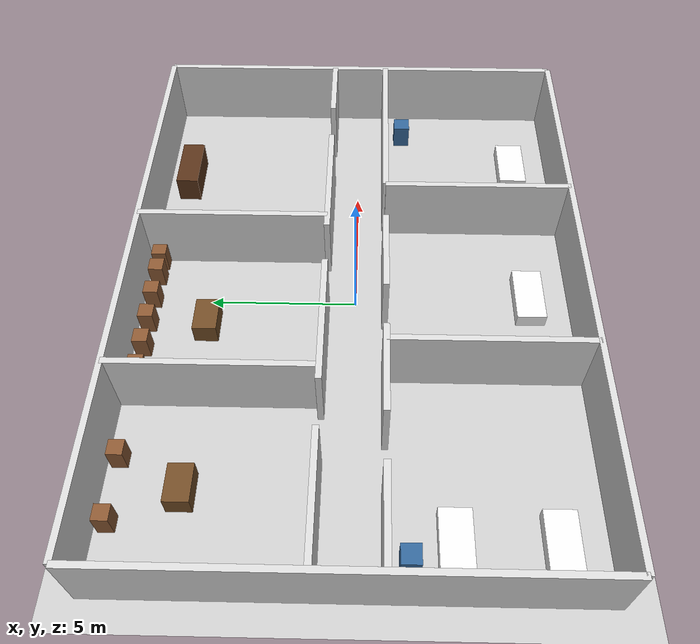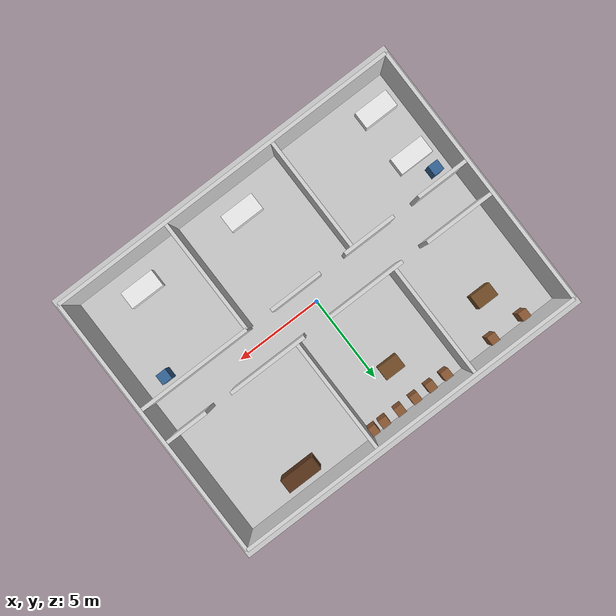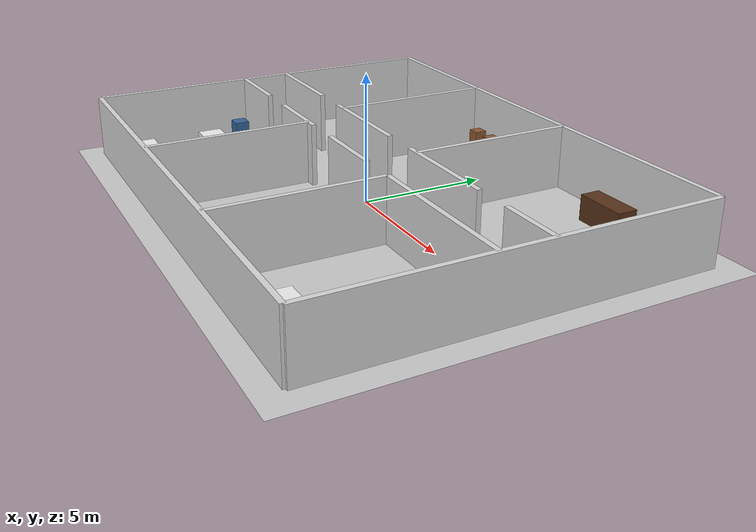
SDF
<?xml version="1.0" ?>
<sdf version="1.8">
  <world name="hospital_world">

    <!-- PHYSICS & PLUGINS (required for Gazebo Harmonic gz sim)       -->
    <physics name="1ms" type="ignored">
      <max_step_size>0.001</max_step_size>
      <real_time_factor>1.0</real_time_factor>
    </physics>

    <plugin
        filename="gz-sim-physics-system"
        name="gz::sim::systems::Physics">
    </plugin>
    <plugin
        filename="gz-sim-user-commands-system"
        name="gz::sim::systems::UserCommands">
    </plugin>
    <plugin
        filename="gz-sim-scene-broadcaster-system"
        name="gz::sim::systems::SceneBroadcaster">
    </plugin>
    <plugin
        filename="gz-sim-sensors-system"
        name="gz::sim::systems::Sensors">
      <render_engine>ogre2</render_engine>
    </plugin>

    <!-- SCENE (background color and ambient lighting)                -->
    <scene>
      <ambient>0.4 0.4 0.4 1</ambient>
      <background>0.7 0.7 0.7 1</background>
      <shadows>true</shadows>
    </scene>

    <!-- LIGHTING                                                       -->

    <!-- Main sun (directional light) -->
    <light type="directional" name="sun">
      <cast_shadows>true</cast_shadows>
      <pose>0 0 10 0 0 0</pose>
      <diffuse>0.9 0.9 0.9 1</diffuse>
      <specular>0.2 0.2 0.2 1</specular>
      <direction>-0.4 0.2 -0.9</direction>
      <attenuation>
        <range>50</range>
        <constant>0.9</constant>
        <linear>0.01</linear>
        <quadratic>0.001</quadratic>
      </attenuation>
    </light>

    <!-- Indoor point light - top half of building -->
    <light type="point" name="indoor_light_top">
      <pose>0 4 4 0 0 0</pose>
      <diffuse>1 1 1 1</diffuse>
      <specular>0.3 0.3 0.3 1</specular>
      <attenuation>
        <range>25</range>
        <constant>0.5</constant>
        <linear>0.05</linear>
        <quadratic>0.002</quadratic>
      </attenuation>
      <cast_shadows>false</cast_shadows>
    </light>

    <!-- Indoor point light - bottom half of building -->
    <light type="point" name="indoor_light_bottom">
      <pose>0 -4 4 0 0 0</pose>
      <diffuse>1 1 1 1</diffuse>
      <specular>0.3 0.3 0.3 1</specular>
      <attenuation>
        <range>25</range>
        <constant>0.5</constant>
        <linear>0.05</linear>
        <quadratic>0.002</quadratic>
      </attenuation>
      <cast_shadows>false</cast_shadows>
    </light>

    <!-- FLOOR PLANE (22m x 17m, slightly larger than the building)    -->
    <model name="hospital_floor">
      <static>true</static>
      <pose>0 0 0 0 0 0</pose>
      <link name="floor_link">
        <collision name="floor_collision">
          <geometry>
            <plane>
              <normal>0 0 1</normal>
              <size>22 17</size>
            </plane>
          </geometry>
        </collision>
        <visual name="floor_visual">
          <geometry>
            <plane>
              <normal>0 0 1</normal>
              <size>22 17</size>
            </plane>
          </geometry>
          <material>
            <ambient>0.8 0.8 0.8 1</ambient>
            <diffuse>0.8 0.8 0.8 1</diffuse>
          </material>
        </visual>
      </link>
    </model>

    <!-- BUILDING LAYOUT OVERVIEW                                       -->
    <!-- Building footprint: 20m (X) x 15m (Y), centered at origin     -->
    <!-- X range: -10 to 10 | Y range: -7.5 to 7.5                     -->
    <!-- Central horizontal corridor: Y = -1 to 1 (2m wide)            -->
    <!-- TOP ROW (Y: 1 to 7.5)                                          -->
    <!--   Reception Area : X -10 to -4                                 -->
    <!--   Waiting Area   : X  -4 to  2                                 -->
    <!--   Nurse Station  : X   2 to 10                                 -->
    <!-- BOTTOM ROW (Y: -7.5 to -1)                                     -->
    <!--   ICU Room       : X -10 to -3                                 -->
    <!--   Patient Room 1 : X  -3 to 3.5                                -->
    <!--   Patient Room 2 : X 3.5 to 10                                 -->
    <!-- All walls: thickness 0.2m, height 2.5m                        -->

    <!-- OUTER PERIMETER WALLS                                          -->

    <!-- North outer wall -->
    <model name="wall_outer_north">
      <static>true</static>
      <pose>0 7.5 1.25 0 0 0</pose>
      <link name="link">
        <collision name="collision">
          <geometry><box><size>20 0.2 2.5</size></box></geometry>
        </collision>
        <visual name="visual">
          <geometry><box><size>20 0.2 2.5</size></box></geometry>
          <material>
            <ambient>0.85 0.85 0.85 1</ambient>
            <diffuse>0.85 0.85 0.85 1</diffuse>
          </material>
        </visual>
      </link>
    </model>

    <!-- South outer wall -->
    <model name="wall_outer_south">
      <static>true</static>
      <pose>0 -7.5 1.25 0 0 0</pose>
      <link name="link">
        <collision name="collision">
          <geometry><box><size>20 0.2 2.5</size></box></geometry>
        </collision>
        <visual name="visual">
          <geometry><box><size>20 0.2 2.5</size></box></geometry>
          <material>
            <ambient>0.85 0.85 0.85 1</ambient>
            <diffuse>0.85 0.85 0.85 1</diffuse>
          </material>
        </visual>
      </link>
    </model>

    <!-- West outer wall -->
    <model name="wall_outer_west">
      <static>true</static>
      <pose>-10 0 1.25 0 0 0</pose>
      <link name="link">
        <collision name="collision">
          <geometry><box><size>0.2 15 2.5</size></box></geometry>
        </collision>
        <visual name="visual">
          <geometry><box><size>0.2 15 2.5</size></box></geometry>
          <material>
            <ambient>0.85 0.85 0.85 1</ambient>
            <diffuse>0.85 0.85 0.85 1</diffuse>
          </material>
        </visual>
      </link>
    </model>

    <!-- East outer wall -->
    <model name="wall_outer_east">
      <static>true</static>
      <pose>10 0 1.25 0 0 0</pose>
      <link name="link">
        <collision name="collision">
          <geometry><box><size>0.2 15 2.5</size></box></geometry>
        </collision>
        <visual name="visual">
          <geometry><box><size>0.2 15 2.5</size></box></geometry>
          <material>
            <ambient>0.85 0.85 0.85 1</ambient>
            <diffuse>0.85 0.85 0.85 1</diffuse>
          </material>
        </visual>
      </link>
    </model>

    <!-- CORRIDOR / TOP-ROOM SEPARATION WALL (Y = 1)                    -->
    <!-- Gaps left for doorways into Reception, Waiting Area,           -->
    <!-- and Nurse Station                                             -->

    <!-- Segment in front of Reception Area -->
    <model name="wall_corridor_top_seg1">
      <static>true</static>
      <pose>-8 1 1.25 0 0 0</pose>
      <link name="link">
        <collision name="collision">
          <geometry><box><size>4 0.2 2.5</size></box></geometry>
        </collision>
        <visual name="visual">
          <geometry><box><size>4 0.2 2.5</size></box></geometry>
          <material>
            <ambient>0.85 0.85 0.85 1</ambient>
            <diffuse>0.85 0.85 0.85 1</diffuse>
          </material>
        </visual>
      </link>
    </model>

    <!-- Segment between Reception door and Waiting Area door -->
    <model name="wall_corridor_top_seg2">
      <static>true</static>
      <pose>-2.25 1 1.25 0 0 0</pose>
      <link name="link">
        <collision name="collision">
          <geometry><box><size>4.5 0.2 2.5</size></box></geometry>
        </collision>
        <visual name="visual">
          <geometry><box><size>4.5 0.2 2.5</size></box></geometry>
          <material>
            <ambient>0.85 0.85 0.85 1</ambient>
            <diffuse>0.85 0.85 0.85 1</diffuse>
          </material>
        </visual>
      </link>
    </model>

    <!-- Segment between Waiting Area door and Nurse Station door -->
    <model name="wall_corridor_top_seg3">
      <static>true</static>
      <pose>3.75 1 1.25 0 0 0</pose>
      <link name="link">
        <collision name="collision">
          <geometry><box><size>4.5 0.2 2.5</size></box></geometry>
        </collision>
        <visual name="visual">
          <geometry><box><size>4.5 0.2 2.5</size></box></geometry>
          <material>
            <ambient>0.85 0.85 0.85 1</ambient>
            <diffuse>0.85 0.85 0.85 1</diffuse>
          </material>
        </visual>
      </link>
    </model>

    <!-- Segment after Nurse Station door -->
    <model name="wall_corridor_top_seg4">
      <static>true</static>
      <pose>8.75 1 1.25 0 0 0</pose>
      <link name="link">
        <collision name="collision">
          <geometry><box><size>2.5 0.2 2.5</size></box></geometry>
        </collision>
        <visual name="visual">
          <geometry><box><size>2.5 0.2 2.5</size></box></geometry>
          <material>
            <ambient>0.85 0.85 0.85 1</ambient>
            <diffuse>0.85 0.85 0.85 1</diffuse>
          </material>
        </visual>
      </link>
    </model>

    <!-- CORRIDOR / BOTTOM-ROOM SEPARATION WALL (Y = -1)                -->
    <!-- Gaps left for doorways into ICU Room, Patient Room 1,         -->
    <!-- and Patient Room 2                                            -->

    <!-- Segment in front of ICU Room -->
    <model name="wall_corridor_bottom_seg1">
      <static>true</static>
      <pose>-8.5 -1 1.25 0 0 0</pose>
      <link name="link">
        <collision name="collision">
          <geometry><box><size>3 0.2 2.5</size></box></geometry>
        </collision>
        <visual name="visual">
          <geometry><box><size>3 0.2 2.5</size></box></geometry>
          <material>
            <ambient>0.85 0.85 0.85 1</ambient>
            <diffuse>0.85 0.85 0.85 1</diffuse>
          </material>
        </visual>
      </link>
    </model>

    <!-- Segment between ICU door and Patient Room 1 door -->
    <model name="wall_corridor_bottom_seg2">
      <static>true</static>
      <pose>-4 -1 1.25 0 0 0</pose>
      <link name="link">
        <collision name="collision">
          <geometry><box><size>3 0.2 2.5</size></box></geometry>
        </collision>
        <visual name="visual">
          <geometry><box><size>3 0.2 2.5</size></box></geometry>
          <material>
            <ambient>0.85 0.85 0.85 1</ambient>
            <diffuse>0.85 0.85 0.85 1</diffuse>
          </material>
        </visual>
      </link>
    </model>

    <!-- Segment between Patient Room 1 door and Patient Room 2 door -->
    <model name="wall_corridor_bottom_seg3">
      <static>true</static>
      <pose>0.5 -1 1.25 0 0 0</pose>
      <link name="link">
        <collision name="collision">
          <geometry><box><size>3 0.2 2.5</size></box></geometry>
        </collision>
        <visual name="visual">
          <geometry><box><size>3 0.2 2.5</size></box></geometry>
          <material>
            <ambient>0.85 0.85 0.85 1</ambient>
            <diffuse>0.85 0.85 0.85 1</diffuse>
          </material>
        </visual>
      </link>
    </model>

    <!-- Segment after Patient Room 2 door -->
    <model name="wall_corridor_bottom_seg4">
      <static>true</static>
      <pose>6.75 -1 1.25 0 0 0</pose>
      <link name="link">
        <collision name="collision">
          <geometry><box><size>6.5 0.2 2.5</size></box></geometry>
        </collision>
        <visual name="visual">
          <geometry><box><size>6.5 0.2 2.5</size></box></geometry>
          <material>
            <ambient>0.85 0.85 0.85 1</ambient>
            <diffuse>0.85 0.85 0.85 1</diffuse>
          </material>
        </visual>
      </link>
    </model>

    <!-- INTERNAL DIVIDING WALLS - TOP ROW                              -->
    <!-- Separates Reception | Waiting Area | Nurse Station            -->

    <!-- Wall between Reception Area and Waiting Area -->
    <model name="wall_divider_reception_waiting">
      <static>true</static>
      <pose>-4 4.25 1.25 0 0 0</pose>
      <link name="link">
        <collision name="collision">
          <geometry><box><size>0.2 6.5 2.5</size></box></geometry>
        </collision>
        <visual name="visual">
          <geometry><box><size>0.2 6.5 2.5</size></box></geometry>
          <material>
            <ambient>0.85 0.85 0.85 1</ambient>
            <diffuse>0.85 0.85 0.85 1</diffuse>
          </material>
        </visual>
      </link>
    </model>

    <!-- Wall between Waiting Area and Nurse Station -->
    <model name="wall_divider_waiting_nurse">
      <static>true</static>
      <pose>2 4.25 1.25 0 0 0</pose>
      <link name="link">
        <collision name="collision">
          <geometry><box><size>0.2 6.5 2.5</size></box></geometry>
        </collision>
        <visual name="visual">
          <geometry><box><size>0.2 6.5 2.5</size></box></geometry>
          <material>
            <ambient>0.85 0.85 0.85 1</ambient>
            <diffuse>0.85 0.85 0.85 1</diffuse>
          </material>
        </visual>
      </link>
    </model>

    <!-- INTERNAL DIVIDING WALLS - BOTTOM ROW                           -->
    <!-- Separates ICU Room | Patient Room 1 | Patient Room 2          -->

    <!-- Wall between ICU Room and Patient Room 1 -->
    <model name="wall_divider_icu_patient1">
      <static>true</static>
      <pose>-3 -4.25 1.25 0 0 0</pose>
      <link name="link">
        <collision name="collision">
          <geometry><box><size>0.2 6.5 2.5</size></box></geometry>
        </collision>
        <visual name="visual">
          <geometry><box><size>0.2 6.5 2.5</size></box></geometry>
          <material>
            <ambient>0.85 0.85 0.85 1</ambient>
            <diffuse>0.85 0.85 0.85 1</diffuse>
          </material>
        </visual>
      </link>
    </model>

    <!-- Wall between Patient Room 1 and Patient Room 2 -->
    <model name="wall_divider_patient1_patient2">
      <static>true</static>
      <pose>3.5 -4.25 1.25 0 0 0</pose>
      <link name="link">
        <collision name="collision">
          <geometry><box><size>0.2 6.5 2.5</size></box></geometry>
        </collision>
        <visual name="visual">
          <geometry><box><size>0.2 6.5 2.5</size></box></geometry>
          <material>
            <ambient>0.85 0.85 0.85 1</ambient>
            <diffuse>0.85 0.85 0.85 1</diffuse>
          </material>
        </visual>
      </link>
    </model>

    <!-- OBSTACLES: HOSPITAL BEDS (4 total)                             -->
    <!-- Located in ICU Room and Patient Rooms 1 & 2                    -->
    <!-- Size: 2.0 x 1.0 x 0.5 m                                        -->

    <!-- ICU Room - Bed 1 -->
    <model name="hospital_bed_icu_1">
      <static>true</static>
      <pose>-8.5 -3 0.25 0 0 0</pose>
      <link name="link">
        <collision name="collision">
          <geometry><box><size>2.0 1.0 0.5</size></box></geometry>
        </collision>
        <visual name="visual">
          <geometry><box><size>2.0 1.0 0.5</size></box></geometry>
          <material>
            <ambient>0.95 0.95 0.95 1</ambient>
            <diffuse>0.95 0.95 0.95 1</diffuse>
          </material>
        </visual>
      </link>
    </model>

    <!-- ICU Room - Bed 2 -->
    <model name="hospital_bed_icu_2">
      <static>true</static>
      <pose>-8.5 -6 0.25 0 0 0</pose>
      <link name="link">
        <collision name="collision">
          <geometry><box><size>2.0 1.0 0.5</size></box></geometry>
        </collision>
        <visual name="visual">
          <geometry><box><size>2.0 1.0 0.5</size></box></geometry>
          <material>
            <ambient>0.95 0.95 0.95 1</ambient>
            <diffuse>0.95 0.95 0.95 1</diffuse>
          </material>
        </visual>
      </link>
    </model>

    <!-- Patient Room 1 - Bed -->
    <model name="hospital_bed_patient_room1">
      <static>true</static>
      <pose>0.25 -6 0.25 0 0 0</pose>
      <link name="link">
        <collision name="collision">
          <geometry><box><size>2.0 1.0 0.5</size></box></geometry>
        </collision>
        <visual name="visual">
          <geometry><box><size>2.0 1.0 0.5</size></box></geometry>
          <material>
            <ambient>0.95 0.95 0.95 1</ambient>
            <diffuse>0.95 0.95 0.95 1</diffuse>
          </material>
        </visual>
      </link>
    </model>

    <!-- Patient Room 2 - Bed -->
    <model name="hospital_bed_patient_room2">
      <static>true</static>
      <pose>6.75 -6 0.25 0 0 0</pose>
      <link name="link">
        <collision name="collision">
          <geometry><box><size>2.0 1.0 0.5</size></box></geometry>
        </collision>
        <visual name="visual">
          <geometry><box><size>2.0 1.0 0.5</size></box></geometry>
          <material>
            <ambient>0.95 0.95 0.95 1</ambient>
            <diffuse>0.95 0.95 0.95 1</diffuse>
          </material>
        </visual>
      </link>
    </model>

    <!-- OBSTACLES: CHAIRS (8 total)                                    -->
    <!-- 6 chairs in Waiting Area, 2 chairs in Reception Area           -->
    <!-- Size: 0.5 x 0.5 x 0.9 m                                        -->

    <!-- Waiting Area chairs (row of 6) -->
    <model name="chair_waiting_1">
      <static>true</static>
      <pose>-3 7 0.45 0 0 0</pose>
      <link name="link">
        <collision name="collision">
          <geometry><box><size>0.5 0.5 0.9</size></box></geometry>
        </collision>
        <visual name="visual">
          <geometry><box><size>0.5 0.5 0.9</size></box></geometry>
          <material>
            <ambient>0.55 0.35 0.2 1</ambient>
            <diffuse>0.55 0.35 0.2 1</diffuse>
          </material>
        </visual>
      </link>
    </model>

    <model name="chair_waiting_2">
      <static>true</static>
      <pose>-2 7 0.45 0 0 0</pose>
      <link name="link">
        <collision name="collision">
          <geometry><box><size>0.5 0.5 0.9</size></box></geometry>
        </collision>
        <visual name="visual">
          <geometry><box><size>0.5 0.5 0.9</size></box></geometry>
          <material>
            <ambient>0.55 0.35 0.2 1</ambient>
            <diffuse>0.55 0.35 0.2 1</diffuse>
          </material>
        </visual>
      </link>
    </model>

    <model name="chair_waiting_3">
      <static>true</static>
      <pose>-1 7 0.45 0 0 0</pose>
      <link name="link">
        <collision name="collision">
          <geometry><box><size>0.5 0.5 0.9</size></box></geometry>
        </collision>
        <visual name="visual">
          <geometry><box><size>0.5 0.5 0.9</size></box></geometry>
          <material>
            <ambient>0.55 0.35 0.2 1</ambient>
            <diffuse>0.55 0.35 0.2 1</diffuse>
          </material>
        </visual>
      </link>
    </model>

    <model name="chair_waiting_4">
      <static>true</static>
      <pose>0 7 0.45 0 0 0</pose>
      <link name="link">
        <collision name="collision">
          <geometry><box><size>0.5 0.5 0.9</size></box></geometry>
        </collision>
        <visual name="visual">
          <geometry><box><size>0.5 0.5 0.9</size></box></geometry>
          <material>
            <ambient>0.55 0.35 0.2 1</ambient>
            <diffuse>0.55 0.35 0.2 1</diffuse>
          </material>
        </visual>
      </link>
    </model>

    <model name="chair_waiting_5">
      <static>true</static>
      <pose>1 7 0.45 0 0 0</pose>
      <link name="link">
        <collision name="collision">
          <geometry><box><size>0.5 0.5 0.9</size></box></geometry>
        </collision>
        <visual name="visual">
          <geometry><box><size>0.5 0.5 0.9</size></box></geometry>
          <material>
            <ambient>0.55 0.35 0.2 1</ambient>
            <diffuse>0.55 0.35 0.2 1</diffuse>
          </material>
        </visual>
      </link>
    </model>

    <model name="chair_waiting_6">
      <static>true</static>
      <pose>1.7 7 0.45 0 0 0</pose>
      <link name="link">
        <collision name="collision">
          <geometry><box><size>0.5 0.5 0.9</size></box></geometry>
        </collision>
        <visual name="visual">
          <geometry><box><size>0.5 0.5 0.9</size></box></geometry>
          <material>
            <ambient>0.55 0.35 0.2 1</ambient>
            <diffuse>0.55 0.35 0.2 1</diffuse>
          </material>
        </visual>
      </link>
    </model>

    <!-- Reception Area chairs (2) -->
    <model name="chair_reception_1">
      <static>true</static>
      <pose>-8 7 0.45 0 0 0</pose>
      <link name="link">
        <collision name="collision">
          <geometry><box><size>0.5 0.5 0.9</size></box></geometry>
        </collision>
        <visual name="visual">
          <geometry><box><size>0.5 0.5 0.9</size></box></geometry>
          <material>
            <ambient>0.55 0.35 0.2 1</ambient>
            <diffuse>0.55 0.35 0.2 1</diffuse>
          </material>
        </visual>
      </link>
    </model>

    <model name="chair_reception_2">
      <static>true</static>
      <pose>-6 7 0.45 0 0 0</pose>
      <link name="link">
        <collision name="collision">
          <geometry><box><size>0.5 0.5 0.9</size></box></geometry>
        </collision>
        <visual name="visual">
          <geometry><box><size>0.5 0.5 0.9</size></box></geometry>
          <material>
            <ambient>0.55 0.35 0.2 1</ambient>
            <diffuse>0.55 0.35 0.2 1</diffuse>
          </material>
        </visual>
      </link>
    </model>

    <!-- OBSTACLES: TABLES (2 total)                                    -->
    <!-- One in Waiting Area, one in Reception Area                     -->
    <!-- Size: 1.2 x 0.8 x 0.75 m                                       -->

    <model name="table_waiting_area">
      <static>true</static>
      <pose>-1 5 0.375 0 0 0</pose>
      <link name="link">
        <collision name="collision">
          <geometry><box><size>1.2 0.8 0.75</size></box></geometry>
        </collision>
        <visual name="visual">
          <geometry><box><size>1.2 0.8 0.75</size></box></geometry>
          <material>
            <ambient>0.45 0.3 0.15 1</ambient>
            <diffuse>0.45 0.3 0.15 1</diffuse>
          </material>
        </visual>
      </link>
    </model>

    <model name="table_reception_area">
      <static>true</static>
      <pose>-7 5 0.375 0 0 0</pose>
      <link name="link">
        <collision name="collision">
          <geometry><box><size>1.2 0.8 0.75</size></box></geometry>
        </collision>
        <visual name="visual">
          <geometry><box><size>1.2 0.8 0.75</size></box></geometry>
          <material>
            <ambient>0.45 0.3 0.15 1</ambient>
            <diffuse>0.45 0.3 0.15 1</diffuse>
          </material>
        </visual>
      </link>
    </model>

    <!-- OBSTACLE: NURSE DESK (1 total)                                 -->
    <!-- Located in the Nurse Station                                  -->
    <!-- Size: 2.0 x 0.8 x 1.0 m                                        -->

    <model name="nurse_station_desk">
      <static>true</static>
      <pose>6 6.5 0.5 0 0 0</pose>
      <link name="link">
        <collision name="collision">
          <geometry><box><size>2.0 0.8 1.0</size></box></geometry>
        </collision>
        <visual name="visual">
          <geometry><box><size>2.0 0.8 1.0</size></box></geometry>
          <material>
            <ambient>0.35 0.2 0.1 1</ambient>
            <diffuse>0.35 0.2 0.1 1</diffuse>
          </material>
        </visual>
      </link>
    </model>

    <!-- OBSTACLES: MEDICAL CARTS (2 total)                             -->
    <!-- One in ICU Room, one in Patient Room 2                         -->
    <!-- Size: 0.6 x 0.6 x 0.9 m                                        -->

    <model name="medical_cart_icu">
      <static>true</static>
      <pose>-9 -1.7 0.45 0 0 0</pose>
      <link name="link">
        <collision name="collision">
          <geometry><box><size>0.6 0.6 0.9</size></box></geometry>
        </collision>
        <visual name="visual">
          <geometry><box><size>0.6 0.6 0.9</size></box></geometry>
          <material>
            <ambient>0.2 0.4 0.6 1</ambient>
            <diffuse>0.2 0.4 0.6 1</diffuse>
          </material>
        </visual>
      </link>
    </model>

    <model name="medical_cart_patient_room2">
      <static>true</static>
      <pose>8.5 -1.7 0.45 0 0 0</pose>
      <link name="link">
        <collision name="collision">
          <geometry><box><size>0.6 0.6 0.9</size></box></geometry>
        </collision>
        <visual name="visual">
          <geometry><box><size>0.6 0.6 0.9</size></box></geometry>
          <material>
            <ambient>0.2 0.4 0.6 1</ambient>
            <diffuse>0.2 0.4 0.6 1</diffuse>
          </material>
        </visual>
      </link>
    </model>

  </world>
</sdf>
